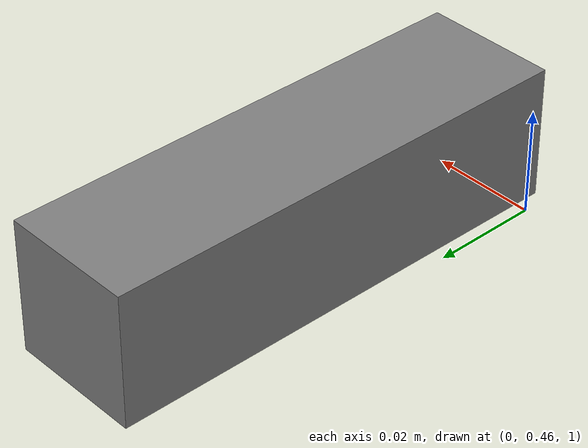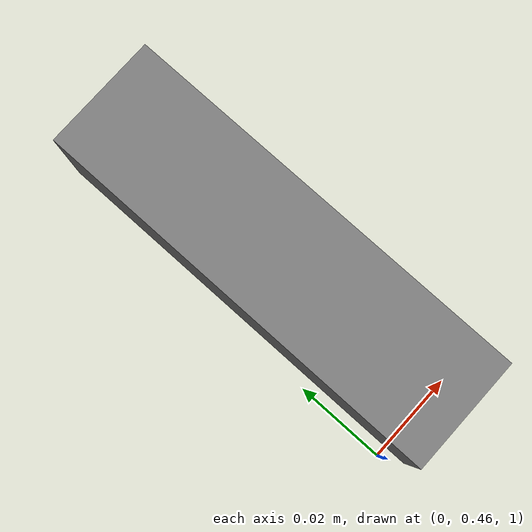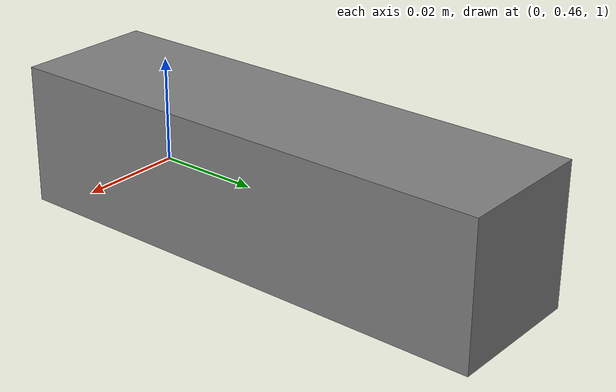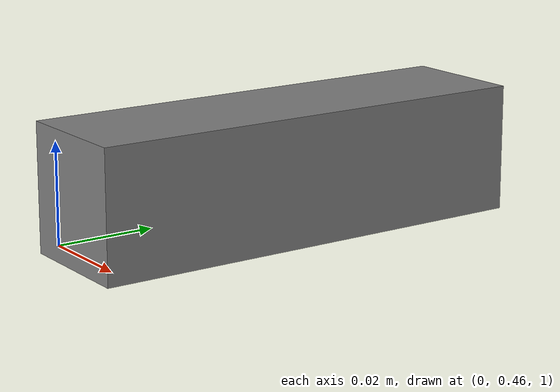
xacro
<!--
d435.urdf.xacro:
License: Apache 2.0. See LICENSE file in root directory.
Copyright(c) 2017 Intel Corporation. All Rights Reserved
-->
<?xml version="1.0"?>
<robot name="mbzirc" xmlns:xacro="http://ros.org/wiki/xacro">
    <link name="world"/>

    <!-- Import macro for realsense-D435 camera-->
    <xacro:include filename="$(find realsense_gazebo_plugin)/urdf/d435.urdf.xacro"/>
    <!-- Create two camera instances -->

    <xacro:sensor_d435 parent="world">
        <origin xyz="0 0.5 1.0" rpy="0 0 0" />
    </xacro:sensor_d435>
</robot>

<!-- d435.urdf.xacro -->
<robot name="mbzirc" xmlns:xacro="http://ros.org/wiki/xacro">
  <!--File includes-->
  <xacro:include filename="$(find realsense_gazebo_plugin)/urdf/d435.gazebo.xacro"/>

  <xacro:macro name="sensor_d435" params="name:=camera topics_ns:=camera parent *origin">
    <xacro:property name="M_PI" value="3.1415926535897931" />

    <!-- The following values are approximate, and the camera node
     publishing TF values with actual calibrated camera extrinsic values -->
    <xacro:property name="d435_cam_depth_to_left_ir_offset" value="0.0"/>
    <xacro:property name="d435_cam_depth_to_right_ir_offset" value="-0.050"/>
    <xacro:property name="d435_cam_depth_to_color_offset" value="0.015"/>

    <!-- The following values model the aluminum peripherial case for the
  	D435 camera, with the camera joint represented by the actual
  	peripherial camera tripod mount -->
    <xacro:property name="d435_cam_width" value="0.090"/>
    <xacro:property name="d435_cam_height" value="0.025"/>
    <xacro:property name="d435_cam_depth" value="0.02505"/>
    <xacro:property name="d435_cam_mount_from_center_offset" value="0.0149"/>

    <!-- The following offset is relative the the physical D435 camera peripherial
  	camera tripod mount -->
    <xacro:property name="d435_cam_depth_px" value="${d435_cam_mount_from_center_offset}"/>
    <xacro:property name="d435_cam_depth_py" value="0.0175"/>
    <xacro:property name="d435_cam_depth_pz" value="${d435_cam_height/2}"/>

    <material name="${name}_aluminum">
	  <color rgba="0.5 0.5 0.5 1"/>
    </material>

    <!-- camera body, with origin at bottom screw mount -->
    <joint name="${name}_joint" type="fixed">
      <xacro:insert_block name="origin" />
      <parent link="${parent}"/>
      <child link="${name}_bottom_screw_frame" />
    </joint>
    <link name="${name}_bottom_screw_frame"/>

    <joint name="${name}_link_joint" type="fixed">
      <origin xyz="0 ${d435_cam_depth_py} ${d435_cam_depth_pz}" rpy="0 0 0"/>
      <parent link="${name}_bottom_screw_frame"/>
      <child link="${name}_link" />
    </joint>

    <link name="${name}_link">
      <visual>
      <origin xyz="${d435_cam_mount_from_center_offset} ${-d435_cam_depth_py} 0" rpy="${M_PI/2} 0 ${M_PI/2}"/>
        <geometry>
          <box size="${d435_cam_width} ${d435_cam_height} ${d435_cam_depth}"/>
        </geometry>
        <material name="${name}_aluminum"/>
      </visual>
      <collision>
        <origin xyz="0 ${-d435_cam_depth_py} 0" rpy="0 0 0"/>
        <geometry>
        <box size="${d435_cam_depth} ${d435_cam_width} ${d435_cam_height}"/>
        </geometry>
      </collision>
      <inertial>
        <!-- The following are not reliable values, and should not be used for modeling -->
        <mass value="0.564" />
        <origin xyz="0 0 0" />
        <inertia ixx="0.003881243" ixy="0.0" ixz="0.0" iyy="0.000498940" iyz="0.0" izz="0.003879257" />
      </inertial>
    </link>

    <!-- camera depth joints and links -->
    <joint name="${name}_depth_joint" type="fixed">
      <origin xyz="0 0 0" rpy="0 0 0"/>
      <parent link="${name}_link"/>
      <child link="${name}_depth_frame" />
    </joint>
    <link name="${name}_depth_frame"/>

    <joint name="${name}_depth_optical_joint" type="fixed">
      <origin xyz="0 0 0" rpy="${-M_PI/2} 0 ${-M_PI/2}" />
      <parent link="${name}_depth_frame" />
      <child link="${name}_depth_optical_frame" />
    </joint>
    <link name="${name}_depth_optical_frame"/>

    <!-- camera left IR joints and links -->
    <joint name="${name}_left_ir_joint" type="fixed">
      <origin xyz="0 ${d435_cam_depth_to_left_ir_offset} 0" rpy="0 0 0" />
      <parent link="${name}_depth_frame" />
      <child link="${name}_left_ir_frame" />
    </joint>
    <link name="${name}_left_ir_frame"/>

    <joint name="${name}_left_ir_optical_joint" type="fixed">
      <origin xyz="0 0 0" rpy="${-M_PI/2} 0 ${-M_PI/2}" />
      <parent link="${name}_left_ir_frame" />
      <child link="${name}_left_ir_optical_frame" />
    </joint>
    <link name="${name}_left_ir_optical_frame"/>

    <!-- camera right IR joints and links -->
    <joint name="${name}_right_ir_joint" type="fixed">
      <origin xyz="0 ${d435_cam_depth_to_right_ir_offset} 0" rpy="0 0 0" />
      <parent link="${name}_depth_frame" />
      <child link="${name}_right_ir_frame" />
    </joint>
    <link name="${name}_right_ir_frame"/>

    <joint name="${name}_right_ir_optical_joint" type="fixed">
      <origin xyz="0 0 0" rpy="${-M_PI/2} 0 ${-M_PI/2}" />
      <parent link="${name}_right_ir_frame" />
      <child link="${name}_right_ir_optical_frame" />
    </joint>
    <link name="${name}_right_ir_optical_frame"/>

    <!-- camera color joints and links -->
    <joint name="${name}_color_joint" type="fixed">
      <origin xyz="0 ${d435_cam_depth_to_color_offset} 0" rpy="0 0 0" />
      <parent link="${name}_depth_frame" />
      <child link="${name}_color_frame" />
    </joint>
    <link name="${name}_color_frame"/>

    <joint name="${name}_color_optical_joint" type="fixed">
      <origin xyz="0 0 0" rpy="${-M_PI/2} 0 ${-M_PI/2}" />
      <parent link="${name}_color_frame" />
      <child link="${name}_color_optical_frame" />
    </joint>
    <link name="${name}_color_optical_frame"/>

    <!-- Realsense Gazebo Plugin -->
    <xacro:gazebo_d435 camera_name="${name}" reference_link="${name}_link" topics_ns="${topics_ns}" depth_optical_frame="${name}_depth_optical_frame" color_optical_frame="${name}_color_optical_frame" infrared1_optical_frame="${name}_left_ir_optical_frame" infrared2_optical_frame="${name}_right_ir_optical_frame"/>

  </xacro:macro>
</robot>
